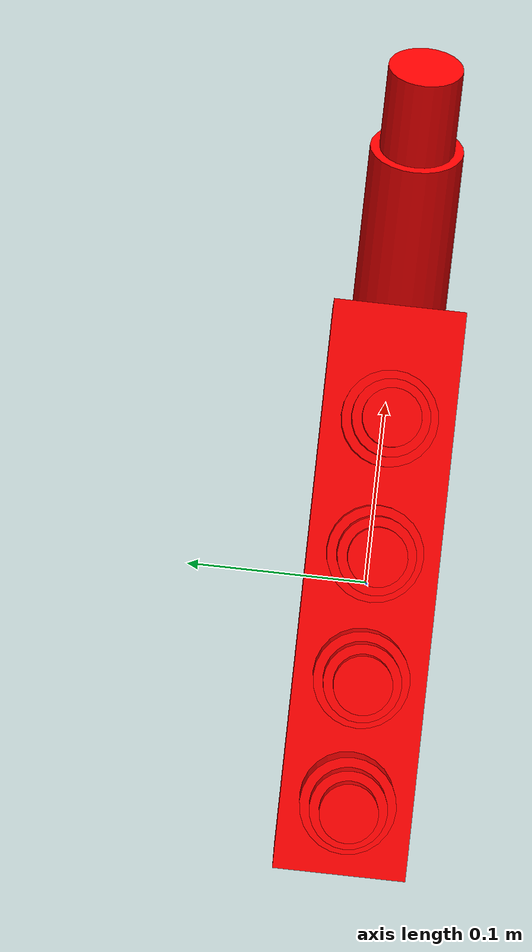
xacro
<?xml version="1.0"?>
<robot name="hand" xmlns:xacro="http://www.ros.org/wiki/xacro">

    <material name="red">
        <color rgba="1 0 0 1" />
    </material>

    <link name="base_link">
        <visual>
            <geometry>
                <box size="0.3 0.07 0.3" />
            </geometry>
            <origin xyz="0 0 0.15" rpy="0 0 0"/>
            <material name="red"/>
        </visual>
    </link>

    <xacro:macro name="finger_link" params="prefix ">
        <link name="${prefix}_finger_link">
            <visual>
                <geometry>
                    <cylinder radius="0.025" length="0.1" />
                </geometry>
                <origin xyz="0 0 0.05" rpy="0 0 0" />
                <material name="red" />
            </visual>
        </link>
    </xacro:macro>

    <xacro:finger_link prefix="finger_2" />
    <xacro:finger_link prefix="finger_1" />
    <xacro:finger_link prefix="finger_3" />
    <xacro:finger_link prefix="finger_4" />
    <xacro:finger_link prefix="thumb" />

    <xacro:macro name="centre_knuckle_finger_link" params="prefix length ">
        <link name="${prefix}_centre_knuckle_finger_link">
            <visual>
                <geometry>
                    <cylinder radius="0.02" length="${length}" />
                </geometry>
                <origin xyz="0 0 ${length / 2.0}" rpy="0 0 0" />
                <material name="red" />
            </visual>
        </link>
    </xacro:macro>

    <xacro:centre_knuckle_finger_link prefix="finger_2" length="0.11"/>
    <xacro:centre_knuckle_finger_link prefix="finger_1" length = "0.075" />
    <xacro:centre_knuckle_finger_link prefix="finger_3" length = "0.075" />
    <xacro:centre_knuckle_finger_link prefix="thumb" length = "0.05" />
    <xacro:centre_knuckle_finger_link prefix="finger_4" length = "0.06" />

    <xacro:macro name="top_knuckle_finger_link" params="prefix length">
        <link name="${prefix}_top_knuckle_finger_link">
            <visual>
                <geometry>
                    <cylinder radius="0.015" length="${length}" />
                </geometry>
                <origin xyz="0 0 0.025" rpy="0 0 0" />
                <material name="red" />
            </visual>
        </link>
    </xacro:macro>

    <xacro:top_knuckle_finger_link prefix="finger_2" length="0.07" />
    <xacro:top_knuckle_finger_link prefix="finger_1" length="0.05"/>
    <xacro:top_knuckle_finger_link prefix="finger_3" length="0.05"/>
    <xacro:top_knuckle_finger_link prefix="finger_4" length="0.05"/>

    <xacro:macro name="top_knuckle_finger_joint" params="prefix zorigin">
        <joint name="${prefix}_top_knuckle_finger_joint" type="revolute">
            <parent link="${prefix}_centre_knuckle_finger_link"/>
            <child link="${prefix}_top_knuckle_finger_link"/>
            <origin xyz="0 0 ${zorigin}" rpy="0 0 0"/>
            <axis xyz = "1 0 0" />
            <limit lower="0.0" upper = "1.57" effort="0" velocity= "0" />
            <mimic joint="${prefix}_centre_knuckle_finger_joint" multiplier="1.5" offset="0"/>
        </joint>
    </xacro:macro>

    <xacro:top_knuckle_finger_joint prefix="finger_2" zorigin="0.11" />
    <xacro:top_knuckle_finger_joint prefix="finger_1" zorigin="0.075" />
    <xacro:top_knuckle_finger_joint prefix="finger_3" zorigin="0.075"  />
    <xacro:top_knuckle_finger_joint prefix="finger_4" zorigin="0.06" />

    <xacro:macro name="centre_knuckle_finger_joint" params="prefix xorigin zorigin pitch" >
        <joint name="${prefix}_centre_knuckle_finger_joint" type="revolute">
            <parent link="${prefix}_finger_link"/>
            <child link="${prefix}_centre_knuckle_finger_link"/>
            <origin xyz="${xorigin} 0 ${zorigin}" rpy="0 ${pitch} 0"/>
            <axis xyz = "1 0 0" />
            <limit lower="0.0" upper = "1.57" effort="0" velocity= "0" />
            <mimic joint="base_${prefix}_finger_joint" multiplier="1.5" offset="0"/>
        </joint>
    </xacro:macro>

    <xacro:centre_knuckle_finger_joint prefix="finger_2" xorigin="0" zorigin= "0.1" pitch="0" />
    <xacro:centre_knuckle_finger_joint prefix="finger_1" xorigin="0" zorigin= "0.1" pitch="0" />
    <xacro:centre_knuckle_finger_joint prefix="finger_3" xorigin="0" zorigin= "0.1" pitch="0" />
    <xacro:centre_knuckle_finger_joint prefix="finger_4" xorigin="0" zorigin= "0.1" pitch="0" />
    <xacro:centre_knuckle_finger_joint prefix="thumb" xorigin="0" zorigin= "0.1" pitch="0" />

    <xacro:macro name="base_finger_joints" params="prefix xorigin zorigin pitch">
        <joint name="base_${prefix}_finger_joint" type="revolute">
            <parent link="base_link"/>
            <child link="${prefix}_finger_link"/>
            <origin xyz="${xorigin} 0 ${zorigin}" rpy="0 ${pitch} 0"/>
            <axis xyz = "1 0 0" />
            <limit lower="0.0" upper = "1.57" effort="0" velocity= "0" />
        </joint>
    </xacro:macro>

    <xacro:base_finger_joints prefix="finger_2" xorigin="0.02" zorigin="0.3" pitch="0" />
    <xacro:base_finger_joints prefix="finger_1" xorigin="0.09" zorigin="0.3" pitch="0" />
    <xacro:base_finger_joints prefix="finger_3" xorigin="-0.045" zorigin="0.3" pitch="0" />
    <xacro:base_finger_joints prefix="finger_4" xorigin="-0.11" zorigin="0.3" pitch="0" />
    <xacro:base_finger_joints prefix="thumb" xorigin="0.15" zorigin="0.2" pitch="1" />

</robot>
